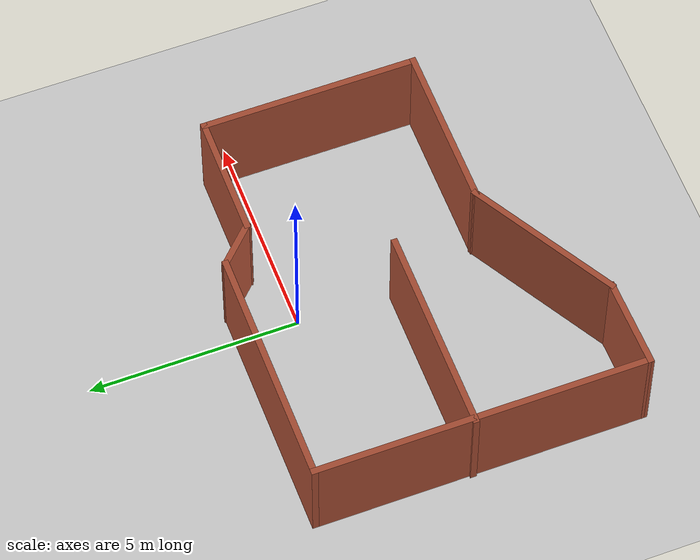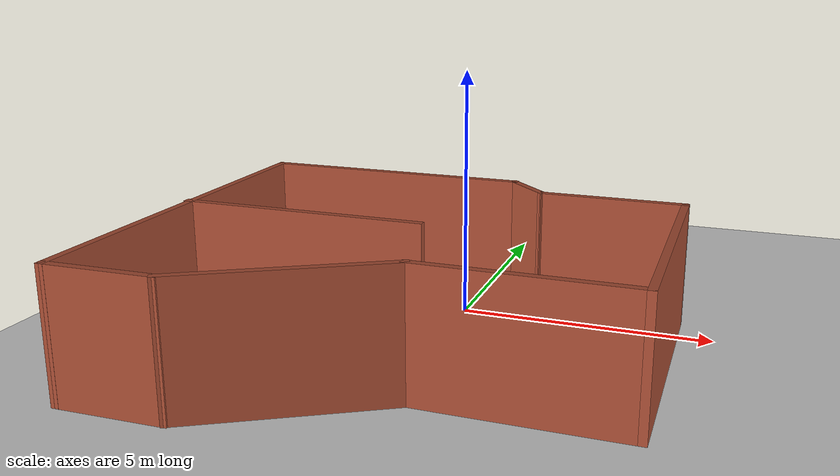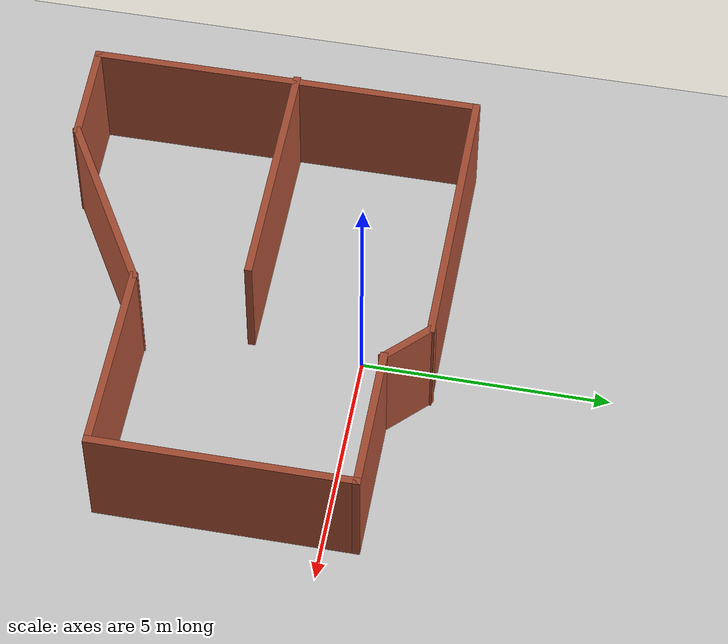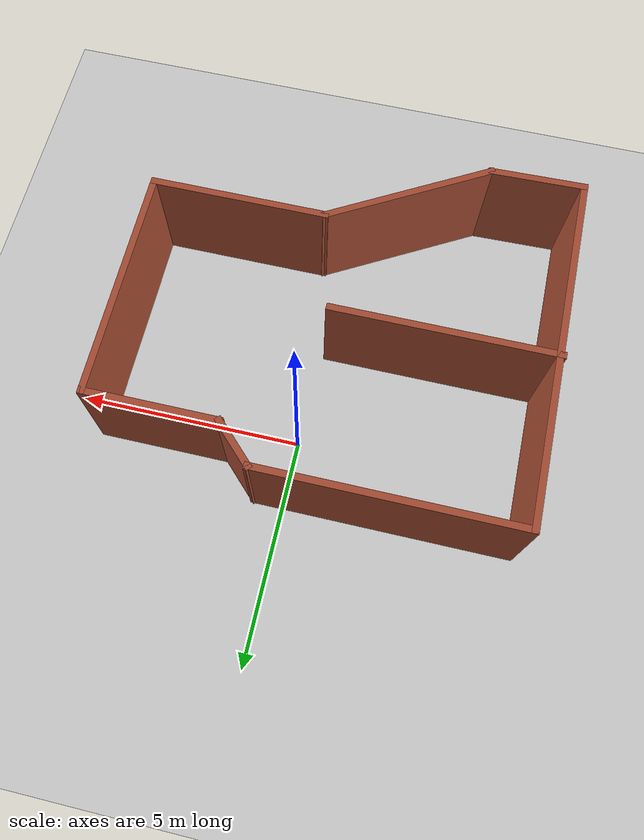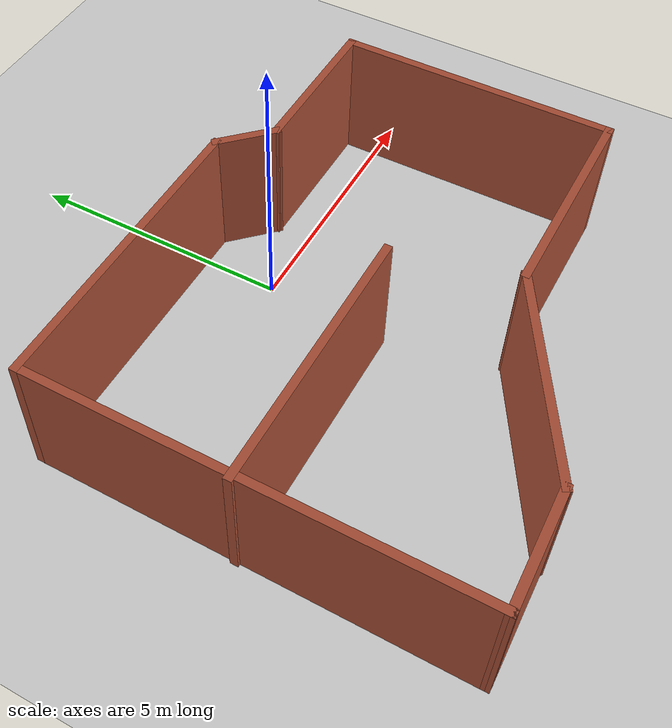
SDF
<sdf version="1.7">
 <world name="default">
  <light name="sun" type="directional">
   <pose>0 0 10 0 -0 0</pose>
   <diffuse>0.8 0.8 0.8 1</diffuse>
   <specular>0.2 0.2 0.2 1</specular>
   <attenuation>
    <range>1000</range>
    <constant>0.9</constant>
    <linear>0.01</linear>
    <quadratic>0.001</quadratic>
   </attenuation>
   <direction>-0.5 0.1 -0.9</direction>
   <spot><inner_angle>0</inner_angle><outer_angle>0</outer_angle><falloff>0</falloff></spot>
  </light>
  <model name="ground_plane">
   <static>1</static>
   <link name="link">
    <collision name="collision">
     <geometry><plane><normal>0 0 1</normal><size>100 100</size></plane></geometry>
     <surface><friction><ode><mu>100</mu><mu2>50</mu2></ode></friction></surface>
    </collision>
    <visual name="visual">
     <cast_shadows>0</cast_shadows>
     <geometry><plane><normal>0 0 1</normal><size>100 100</size></plane></geometry>
     <material>
      <script><uri>file://media/materials/scripts/gazebo.material</uri><name>Gazebo/Grey</name></script>
     </material>
    </visual>
   </link>
  </model>
  <gravity>0 0 -9.8</gravity>
  <magnetic_field>6e-06 2.3e-05 -4.2e-05</magnetic_field>
  <atmosphere type="adiabatic"/>
  <physics type="ode">
   <max_step_size>0.001</max_step_size>
   <real_time_factor>1</real_time_factor>
   <real_time_update_rate>1000</real_time_update_rate>
  </physics>
  <scene><ambient>0.4 0.4 0.4 1</ambient><background>0.7 0.7 0.7 1</background><shadows>1</shadows></scene>
  <audio><device>default</device></audio>
  <spherical_coordinates>
   <surface_model>EARTH_WGS84</surface_model>
   <latitude_deg>0</latitude_deg>
   <longitude_deg>0</longitude_deg>
   <elevation>0</elevation>
   <heading_deg>0</heading_deg>
  </spherical_coordinates>
  <model name="Untitledmaka">
   <pose>-0.383405 -2.46368 0 0 -0 0</pose>
   <link name="Wall_0">
    <collision name="Wall_0_Collision">
     <geometry><box><size>4 0.15 2.5</size></box></geometry>
     <pose>0 0 1.25 0 -0 0</pose>
    </collision>
    <visual name="Wall_0_Visual">
     <pose>0 0 1.25 0 -0 0</pose>
     <geometry><box><size>4 0.15 2.5</size></box></geometry>
     <material>
      <script><uri>file://media/materials/scripts/gazebo.material</uri><name>Gazebo/Bricks</name></script>
      <ambient>1 1 1 1</ambient>
     </material>
     <meta><layer>0</layer></meta>
    </visual>
    <pose>-0.877346 -2.92999 0 0 -0 0.523599</pose>
   </link>
   <link name="Wall_1">
    <collision name="Wall_1_Collision">
     <geometry><box><size>4 0.15 2.5</size></box></geometry>
     <pose>0 0 1.25 0 -0 0</pose>
    </collision>
    <visual name="Wall_1_Visual">
     <pose>0 0 1.25 0 -0 0</pose>
     <geometry><box><size>4 0.15 2.5</size></box></geometry>
     <material>
      <script><uri>file://media/materials/scripts/gazebo.material</uri><name>Gazebo/Bricks</name></script>
      <ambient>1 1 1 1</ambient>
     </material>
     <meta><layer>0</layer></meta>
    </visual>
    <pose>2.71475 -1.96749 0 0 -0 0</pose>
   </link>
   <link name="Wall_2">
    <collision name="Wall_2_Collision">
     <geometry><box><size>5.25 0.15 2.5</size></box></geometry>
     <pose>0 0 1.25 0 -0 0</pose>
    </collision>
    <visual name="Wall_2_Visual">
     <pose>0 0 1.25 0 -0 0</pose>
     <geometry><box><size>5.25 0.15 2.5</size></box></geometry>
     <material>
      <script><uri>file://media/materials/scripts/gazebo.material</uri><name>Gazebo/Bricks</name></script>
      <ambient>1 1 1 1</ambient>
     </material>
     <meta><layer>0</layer></meta>
    </visual>
    <pose>4.63975 0.582505 0 0 -0 1.5708</pose>
   </link>
   <link name="Wall_3">
    <collision name="Wall_3_Collision">
     <geometry><box><size>3 0.15 2.5</size></box></geometry>
     <pose>0 0 1.25 0 -0 0</pose>
    </collision>
    <visual name="Wall_3_Visual">
     <pose>0 0 1.25 0 -0 0</pose>
     <geometry><box><size>3 0.15 2.5</size></box></geometry>
     <material>
      <script><uri>file://media/materials/scripts/gazebo.material</uri><name>Gazebo/Bricks</name></script>
      <ambient>1 1 1 1</ambient>
     </material>
     <meta><layer>0</layer></meta>
    </visual>
    <pose>3.21475 3.13251 0 0 -0 3.14159</pose>
   </link>
   <link name="Wall_4">
    <collision name="Wall_4_Collision">
     <geometry><box><size>1.25 0.15 2.5</size></box></geometry>
     <pose>0 0 1.25 0 -0 0</pose>
    </collision>
    <visual name="Wall_4_Visual">
     <pose>0 0 1.25 0 -0 0</pose>
     <geometry><box><size>1.25 0.15 2.5</size></box></geometry>
     <material>
      <script><uri>file://media/materials/scripts/gazebo.material</uri><name>Gazebo/Bricks</name></script>
      <ambient>1 1 1 1</ambient>
     </material>
     <meta><layer>0</layer></meta>
    </visual>
    <pose>1.40084 3.52141 0 0 -0 2.35619</pose>
   </link>
   <link name="Wall_5">
    <collision name="Wall_5_Collision">
     <geometry><box><size>5.75 0.15 2.5</size></box></geometry>
     <pose>0 0 1.25 0 -0 0</pose>
    </collision>
    <visual name="Wall_5_Visual">
     <pose>0 0 1.25 0 -0 0</pose>
     <geometry><box><size>5.75 0.15 2.5</size></box></geometry>
     <material>
      <script><uri>file://media/materials/scripts/gazebo.material</uri><name>Gazebo/Bricks</name></script>
      <ambient>1 1 1 1</ambient>
     </material>
     <meta><layer>0</layer></meta>
    </visual>
    <pose>-1.78806 3.91032 0 0 -0 3.14159</pose>
   </link>
   <link name="Wall_6">
    <collision name="Wall_6_Collision">
     <geometry><box><size>8 0.15 2.5</size></box></geometry>
     <pose>0 0 1.25 0 -0 0</pose>
    </collision>
    <visual name="Wall_6_Visual">
     <pose>0 0 1.25 0 -0 0</pose>
     <geometry><box><size>8 0.15 2.5</size></box></geometry>
     <material>
      <script><uri>file://media/materials/scripts/gazebo.material</uri><name>Gazebo/Bricks</name></script>
      <ambient>1 1 1 1</ambient>
     </material>
     <meta><layer>0</layer></meta>
    </visual>
    <pose>-4.58806 -0.014678 0 0 -0 -1.5708</pose>
   </link>
   <link name="Wall_7">
    <collision name="Wall_7_Collision">
     <geometry><box><size>2.19416 0.15 2.5</size></box></geometry>
     <pose>0 0 1.25 0 -0 0</pose>
    </collision>
    <visual name="Wall_7_Visual">
     <pose>0 0 1.25 0 -0 0</pose>
     <geometry><box><size>2.19416 0.15 2.5</size></box></geometry>
     <material>
      <script><uri>file://media/materials/scripts/gazebo.material</uri><name>Gazebo/Bricks</name></script>
      <ambient>1 1 1 1</ambient>
     </material>
     <meta><layer>0</layer></meta>
    </visual>
    <pose>-3.56625 -3.91609 0 0 -0 0.023084</pose>
   </link>
   <link name="Wall_9">
    <collision name="Wall_9_Collision">
     <geometry><box><size>5 0.15 2.5</size></box></geometry>
     <pose>0 0 1.25 0 -0 0</pose>
    </collision>
    <visual name="Wall_9_Visual">
     <pose>0 0 1.25 0 -0 0</pose>
     <geometry><box><size>5 0.15 2.5</size></box></geometry>
     <material>
      <script><uri>file://media/materials/scripts/gazebo.material</uri><name>Gazebo/Bricks</name></script>
      <ambient>1 1 1 1</ambient>
     </material>
     <meta><layer>0</layer></meta>
    </visual>
    <pose>-2.21475 0.193697 0 0 -0 0</pose>
   </link>
   <static>1</static>
  </model>
 </world>
</sdf>
